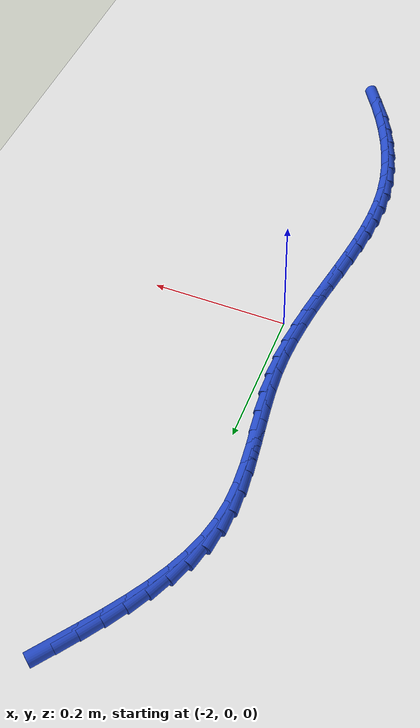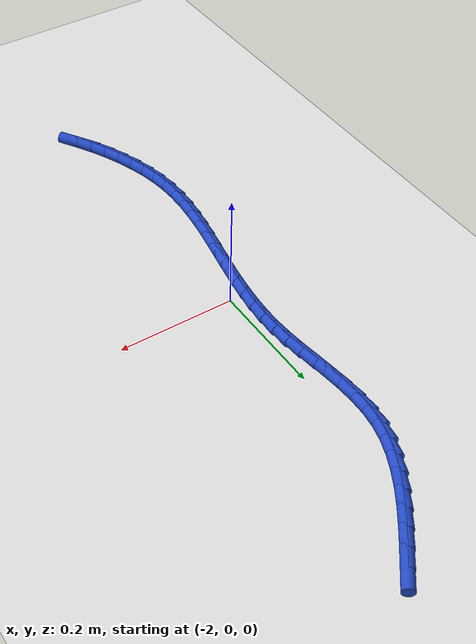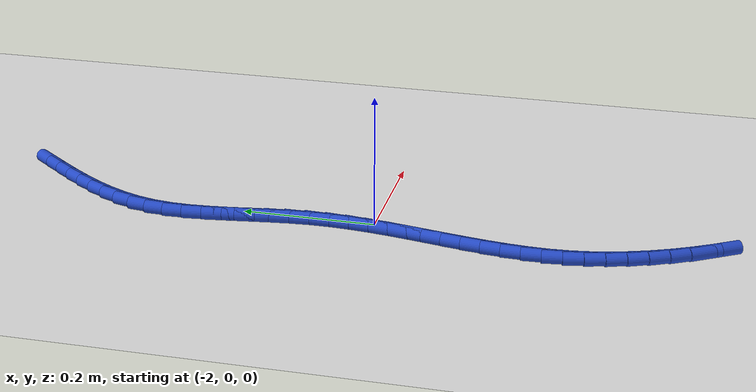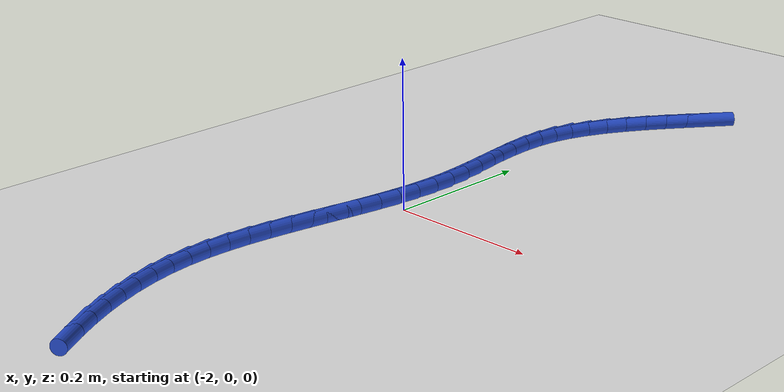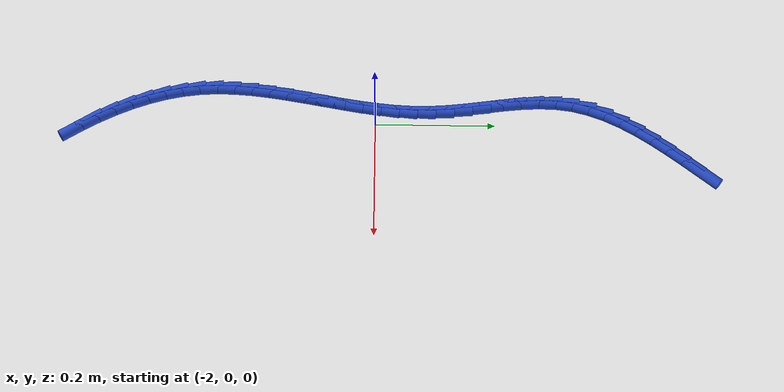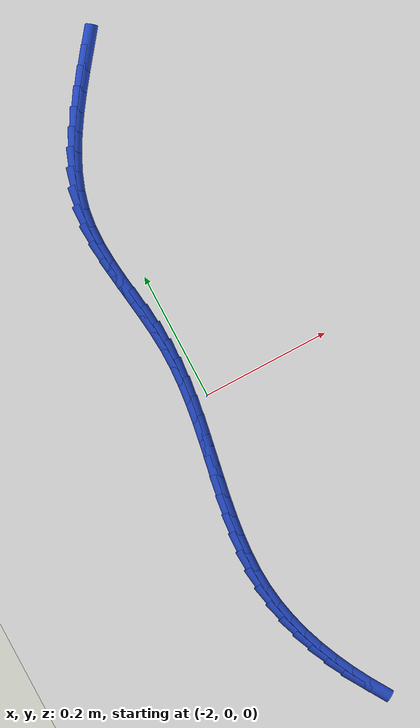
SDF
<sdf version="1.6">
 <world name="default">
  <model name="ground_plane">
   <static>1</static>
   <link name="link">
    <collision name="collision">
     <geometry><plane><normal>0 0 1</normal><size>100 100</size></plane></geometry>
     <surface><friction><ode><mu>100</mu><mu2>50</mu2></ode></friction></surface>
    </collision>
    <visual name="visual">
     <cast_shadows>0</cast_shadows>
     <geometry><plane><normal>0 0 1</normal><size>100 100</size></plane></geometry>
     <material>
      <script><uri>file://media/materials/scripts/gazebo.material</uri><name>Gazebo/WhiteGlow</name></script>
     </material>
    </visual>
   </link>
  </model>
  <model name="line">
   <link name="link_91">
    <pose>-1.9174202712299586 0.5385667051766511 0.01 0 1.57 0.9115392157638947</pose>
    <collision name="collision">
     <geometry><cylinder><radius>0.01</radius><length>0.08</length></cylinder></geometry>
    </collision>
    <visual name="visual">
     <material>
      <script><name>Gazebo/Blue</name><uri>file://media/materials/scripts/gazebo.material</uri></script>
     </material>
     <geometry><cylinder><radius>0.01</radius><length>0.08</length></cylinder></geometry>
    </visual>
   </link>
   <link name="link_92">
    <pose>-1.9366600018459328 0.5137385308742393 0.01 0 1.57 0.9272586865867808</pose>
    <collision name="collision">
     <geometry><cylinder><radius>0.01</radius><length>0.08</length></cylinder></geometry>
    </collision>
    <visual name="visual">
     <material>
      <script><name>Gazebo/Blue</name><uri>file://media/materials/scripts/gazebo.material</uri></script>
     </material>
     <geometry><cylinder><radius>0.01</radius><length>0.08</length></cylinder></geometry>
    </visual>
   </link>
   <link name="link_93">
    <pose>-1.9554236560845026 0.4887222291935094 0.01 0 1.57 0.9555061300025273</pose>
    <collision name="collision">
     <geometry><cylinder><radius>0.01</radius><length>0.08</length></cylinder></geometry>
    </collision>
    <visual name="visual">
     <material>
      <script><name>Gazebo/Blue</name><uri>file://media/materials/scripts/gazebo.material</uri></script>
     </material>
     <geometry><cylinder><radius>0.01</radius><length>0.08</length></cylinder></geometry>
    </visual>
   </link>
   <link name="link_94">
    <pose>-1.9732894176212754 0.4634460668809005 0.01 0 1.57 0.9971433683004516</pose>
    <collision name="collision">
     <geometry><cylinder><radius>0.01</radius><length>0.08</length></cylinder></geometry>
    </collision>
    <visual name="visual">
     <material>
      <script><name>Gazebo/Blue</name><uri>file://media/materials/scripts/gazebo.material</uri></script>
     </material>
     <geometry><cylinder><radius>0.01</radius><length>0.08</length></cylinder></geometry>
    </visual>
   </link>
   <link name="link_95">
    <pose>-1.9898354701318612 0.4378383106828499 0.01 0 1.57 1.0533603252424557</pose>
    <collision name="collision">
     <geometry><cylinder><radius>0.01</radius><length>0.08</length></cylinder></geometry>
    </collision>
    <visual name="visual">
     <material>
      <script><name>Gazebo/Blue</name><uri>file://media/materials/scripts/gazebo.material</uri></script>
     </material>
     <geometry><cylinder><radius>0.01</radius><length>0.08</length></cylinder></geometry>
    </visual>
   </link>
   <link name="link_96">
    <pose>-2.0046399972918674 0.4118272273457962 0.01 0 1.57 1.125493086305104</pose>
    <collision name="collision">
     <geometry><cylinder><radius>0.01</radius><length>0.08</length></cylinder></geometry>
    </collision>
    <visual name="visual">
     <material>
      <script><name>Gazebo/Blue</name><uri>file://media/materials/scripts/gazebo.material</uri></script>
     </material>
     <geometry><cylinder><radius>0.01</radius><length>0.08</length></cylinder></geometry>
    </visual>
   </link>
   <link name="link_97">
    <pose>-2.0172811827769035 0.38534108361617714 0.01 0 1.57 1.2146657026031353</pose>
    <collision name="collision">
     <geometry><cylinder><radius>0.01</radius><length>0.08</length></cylinder></geometry>
    </collision>
    <visual name="visual">
     <material>
      <script><name>Gazebo/Blue</name><uri>file://media/materials/scripts/gazebo.material</uri></script>
     </material>
     <geometry><cylinder><radius>0.01</radius><length>0.08</length></cylinder></geometry>
    </visual>
   </link>
   <link name="link_98">
    <pose>-2.0273372102625777 0.3583081462404305 0.01 0 1.57 1.3211876445858368</pose>
    <collision name="collision">
     <geometry><cylinder><radius>0.01</radius><length>0.08</length></cylinder></geometry>
    </collision>
    <visual name="visual">
     <material>
      <script><name>Gazebo/Blue</name><uri>file://media/materials/scripts/gazebo.material</uri></script>
     </material>
     <geometry><cylinder><radius>0.01</radius><length>0.08</length></cylinder></geometry>
    </visual>
   </link>
   <link name="link_99">
    <pose>-2.034386263424498 0.3306566819649948 0.01 0 1.57 1.4412703697530307</pose>
    <collision name="collision">
     <geometry><cylinder><radius>0.01</radius><length>0.08</length></cylinder></geometry>
    </collision>
    <visual name="visual">
     <material>
      <script><name>Gazebo/Blue</name><uri>file://media/materials/scripts/gazebo.material</uri></script>
     </material>
     <geometry><cylinder><radius>0.01</radius><length>0.08</length></cylinder></geometry>
    </visual>
   </link>
   <link name="link_100">
    <pose>-2.0380765347162346 0.3023255963508941 0.01 0 1.57 1.5476922811112919</pose>
    <collision name="collision">
     <geometry><cylinder><radius>0.01</radius><length>0.08</length></cylinder></geometry>
    </collision>
    <visual name="visual">
     <material>
      <script><name>Gazebo/Blue</name><uri>file://media/materials/scripts/gazebo.material</uri></script>
     </material>
     <geometry><cylinder><radius>0.01</radius><length>0.08</length></cylinder></geometry>
    </visual>
   </link>
   <link name="link_101">
    <pose>-2.0387459085541235 0.2733586033150124 0.01 0 1.57 -1.5158908928355868</pose>
    <collision name="collision">
     <geometry><cylinder><radius>0.01</radius><length>0.08</length></cylinder></geometry>
    </collision>
    <visual name="visual">
     <material>
      <script><name>Gazebo/Blue</name><uri>file://media/materials/scripts/gazebo.material</uri></script>
     </material>
     <geometry><cylinder><radius>0.01</radius><length>0.08</length></cylinder></geometry>
    </visual>
   </link>
   <link name="link_102">
    <pose>-2.037124592458605 0.24385903576608106 0.01 0 1.57 -1.4650293170088673</pose>
    <collision name="collision">
     <geometry><cylinder><radius>0.01</radius><length>0.08</length></cylinder></geometry>
    </collision>
    <visual name="visual">
     <material>
      <script><name>Gazebo/Blue</name><uri>file://media/materials/scripts/gazebo.material</uri></script>
     </material>
     <geometry><cylinder><radius>0.01</radius><length>0.08</length></cylinder></geometry>
    </visual>
   </link>
   <link name="link_103">
    <pose>-2.033947328181794 0.2139309156528575 0.01 0 1.57 -1.4393887006233637</pose>
    <collision name="collision">
     <geometry><cylinder><radius>0.01</radius><length>0.08</length></cylinder></geometry>
    </collision>
    <visual name="visual">
     <material>
      <script><name>Gazebo/Blue</name><uri>file://media/materials/scripts/gazebo.material</uri></script>
     </material>
     <geometry><cylinder><radius>0.01</radius><length>0.08</length></cylinder></geometry>
    </visual>
   </link>
   <link name="link_104">
    <pose>-2.0299488574758078 0.18367826492409778 0.01 0 1.57 -1.4375404425537504</pose>
    <collision name="collision">
     <geometry><cylinder><radius>0.01</radius><length>0.08</length></cylinder></geometry>
    </collision>
    <visual name="visual">
     <material>
      <script><name>Gazebo/Blue</name><uri>file://media/materials/scripts/gazebo.material</uri></script>
     </material>
     <geometry><cylinder><radius>0.01</radius><length>0.08</length></cylinder></geometry>
    </visual>
   </link>
   <link name="link_105">
    <pose>-2.025863922092758 0.15320510552855918 0.01 0 1.57 -1.4589183470313962</pose>
    <collision name="collision">
     <geometry><cylinder><radius>0.01</radius><length>0.08</length></cylinder></geometry>
    </collision>
    <visual name="visual">
     <material>
      <script><name>Gazebo/Blue</name><uri>file://media/materials/scripts/gazebo.material</uri></script>
     </material>
     <geometry><cylinder><radius>0.01</radius><length>0.08</length></cylinder></geometry>
    </visual>
   </link>
   <link name="link_106">
    <pose>-2.0224272637847625 0.12261545941499769 0.01 0 1.57 -1.5037890223321322</pose>
    <collision name="collision">
     <geometry><cylinder><radius>0.01</radius><length>0.08</length></cylinder></geometry>
    </collision>
    <visual name="visual">
     <material>
      <script><name>Gazebo/Blue</name><uri>file://media/materials/scripts/gazebo.material</uri></script>
     </material>
     <geometry><cylinder><radius>0.01</radius><length>0.08</length></cylinder></geometry>
    </visual>
   </link>
   <link name="link_107">
    <pose>-2.0203736243039345 0.09201334853217064 0.01 0 1.57 -1.5674131818990953</pose>
    <collision name="collision">
     <geometry><cylinder><radius>0.01</radius><length>0.08</length></cylinder></geometry>
    </collision>
    <visual name="visual">
     <material>
      <script><name>Gazebo/Blue</name><uri>file://media/materials/scripts/gazebo.material</uri></script>
     </material>
     <geometry><cylinder><radius>0.01</radius><length>0.08</length></cylinder></geometry>
    </visual>
   </link>
   <link name="link_108">
    <pose>-2.020270350408525 0.061487460762905594 0.01 0 1.57 1.515199683988353</pose>
    <collision name="collision">
     <geometry><cylinder><radius>0.01</radius><length>0.08</length></cylinder></geometry>
    </collision>
    <visual name="visual">
     <material>
      <script><name>Gazebo/Blue</name><uri>file://media/materials/scripts/gazebo.material</uri></script>
     </material>
     <geometry><cylinder><radius>0.01</radius><length>0.08</length></cylinder></geometry>
    </visual>
   </link>
   <link name="link_109">
    <pose>-2.0219637361281935 0.031060432611655524 0.01 0 1.57 1.4675404997872972</pose>
    <collision name="collision">
     <geometry><cylinder><radius>0.01</radius><length>0.08</length></cylinder></geometry>
    </collision>
    <visual name="visual">
     <material>
      <script><name>Gazebo/Blue</name><uri>file://media/materials/scripts/gazebo.material</uri></script>
     </material>
     <geometry><cylinder><radius>0.01</radius><length>0.08</length></cylinder></geometry>
    </visual>
   </link>
   <link name="link_110">
    <pose>-2.025105970076821 0.0007371197330750734 0.01 0 1.57 1.4312718009136338</pose>
    <collision name="collision">
     <geometry><cylinder><radius>0.01</radius><length>0.08</length></cylinder></geometry>
    </collision>
    <visual name="visual">
     <material>
      <script><name>Gazebo/Blue</name><uri>file://media/materials/scripts/gazebo.material</uri></script>
     </material>
     <geometry><cylinder><radius>0.01</radius><length>0.08</length></cylinder></geometry>
    </visual>
   </link>
   <link name="link_111">
    <pose>-2.029349238156505 -0.02947762246658986 0.01 0 1.57 1.4063070487789713</pose>
    <collision name="collision">
     <geometry><cylinder><radius>0.01</radius><length>0.08</length></cylinder></geometry>
    </collision>
    <visual name="visual">
     <material>
      <script><name>Gazebo/Blue</name><uri>file://media/materials/scripts/gazebo.material</uri></script>
     </material>
     <geometry><cylinder><radius>0.01</radius><length>0.08</length></cylinder></geometry>
    </visual>
   </link>
   <link name="link_112">
    <pose>-2.034345726269344 -0.05957893858109448 0.01 0 1.57 1.392543551514347</pose>
    <collision name="collision">
     <geometry><cylinder><radius>0.01</radius><length>0.08</length></cylinder></geometry>
    </collision>
    <visual name="visual">
     <material>
      <script><name>Gazebo/Blue</name><uri>file://media/materials/scripts/gazebo.material</uri></script>
     </material>
     <geometry><cylinder><radius>0.01</radius><length>0.08</length></cylinder></geometry>
    </visual>
   </link>
   <link name="link_113">
    <pose>-2.0397476203174336 -0.0895619732041937 0.01 0 1.57 1.3899570549970033</pose>
    <collision name="collision">
     <geometry><cylinder><radius>0.01</radius><length>0.08</length></cylinder></geometry>
    </collision>
    <visual name="visual">
     <material>
      <script><name>Gazebo/Blue</name><uri>file://media/materials/scripts/gazebo.material</uri></script>
     </material>
     <geometry><cylinder><radius>0.01</radius><length>0.08</length></cylinder></geometry>
    </visual>
   </link>
   <link name="link_114">
    <pose>-2.0452071062028745 -0.11942187092964314 0.01 0 1.57 1.3986545651890643</pose>
    <collision name="collision">
     <geometry><cylinder><radius>0.01</radius><length>0.08</length></cylinder></geometry>
    </collision>
    <visual name="visual">
     <material>
      <script><name>Gazebo/Blue</name><uri>file://media/materials/scripts/gazebo.material</uri></script>
     </material>
     <geometry><cylinder><radius>0.01</radius><length>0.08</length></cylinder></geometry>
    </visual>
   </link>
   <link name="link_115">
    <pose>-2.0503763698277626 -0.14915377635119623 0.01 0 1.57 1.4188888055691105</pose>
    <collision name="collision">
     <geometry><cylinder><radius>0.01</radius><length>0.08</length></cylinder></geometry>
    </collision>
    <visual name="visual">
     <material>
      <script><name>Gazebo/Blue</name><uri>file://media/materials/scripts/gazebo.material</uri></script>
     </material>
     <geometry><cylinder><radius>0.01</radius><length>0.08</length></cylinder></geometry>
    </visual>
   </link>
   <link name="link_116">
    <pose>-2.0549075970941955 -0.17875283406260845 0.01 0 1.57 1.4510323278225519</pose>
    <collision name="collision">
     <geometry><cylinder><radius>0.01</radius><length>0.08</length></cylinder></geometry>
    </collision>
    <visual name="visual">
     <material>
      <script><name>Gazebo/Blue</name><uri>file://media/materials/scripts/gazebo.material</uri></script>
     </material>
     <geometry><cylinder><radius>0.01</radius><length>0.08</length></cylinder></geometry>
    </visual>
   </link>
   <link name="link_117">
    <pose>-2.0584529739042723 -0.20821418865763486 0.01 0 1.57 1.4955022687764408</pose>
    <collision name="collision">
     <geometry><cylinder><radius>0.01</radius><length>0.08</length></cylinder></geometry>
    </collision>
    <visual name="visual">
     <material>
      <script><name>Gazebo/Blue</name><uri>file://media/materials/scripts/gazebo.material</uri></script>
     </material>
     <geometry><cylinder><radius>0.01</radius><length>0.08</length></cylinder></geometry>
    </visual>
   </link>
   <link name="link_118">
    <pose>-2.0606646861600897 -0.23753298473003098 0.01 0 1.57 1.5526218289649503</pose>
    <collision name="collision">
     <geometry><cylinder><radius>0.01</radius><length>0.08</length></cylinder></geometry>
    </collision>
    <visual name="visual">
     <material>
      <script><name>Gazebo/Blue</name><uri>file://media/materials/scripts/gazebo.material</uri></script>
     </material>
     <geometry><cylinder><radius>0.01</radius><length>0.08</length></cylinder></geometry>
    </visual>
   </link>
   <link name="link_119">
    <pose>-2.0611949197637456 -0.2667043668735502 0.01 0 1.57 -1.5191845539704778</pose>
    <collision name="collision">
     <geometry><cylinder><radius>0.01</radius><length>0.08</length></cylinder></geometry>
    </collision>
    <visual name="visual">
     <material>
      <script><name>Gazebo/Blue</name><uri>file://media/materials/scripts/gazebo.material</uri></script>
     </material>
     <geometry><cylinder><radius>0.01</radius><length>0.08</length></cylinder></geometry>
    </visual>
   </link>
   <link name="link_120">
    <pose>-2.059695860617338 -0.2957234796819482 0.01 0 1.57 -1.4391969134584592</pose>
    <collision name="collision">
     <geometry><cylinder><radius>0.01</radius><length>0.08</length></cylinder></geometry>
    </collision>
    <visual name="visual">
     <material>
      <script><name>Gazebo/Blue</name><uri>file://media/materials/scripts/gazebo.material</uri></script>
     </material>
     <geometry><cylinder><radius>0.01</radius><length>0.08</length></cylinder></geometry>
    </visual>
   </link>
   <link name="link_121">
    <pose>-2.0558762451945873 -0.32458029555564927 0.01 0 1.57 -1.3610787367109451</pose>
    <collision name="collision">
     <geometry><cylinder><radius>0.01</radius><length>0.08</length></cylinder></geometry>
    </collision>
    <visual name="visual">
     <material>
      <script><name>Gazebo/Blue</name><uri>file://media/materials/scripts/gazebo.material</uri></script>
     </material>
     <geometry><cylinder><radius>0.01</radius><length>0.08</length></cylinder></geometry>
    </visual>
   </link>
   <link name="link_122">
    <pose>-2.0497773036404325 -0.3532343765650092 0.01 0 1.57 -1.28918974333573</pose>
    <collision name="collision">
     <geometry><cylinder><radius>0.01</radius><length>0.08</length></cylinder></geometry>
    </collision>
    <visual name="visual">
     <material>
      <script><name>Gazebo/Blue</name><uri>file://media/materials/scripts/gazebo.material</uri></script>
     </material>
     <geometry><cylinder><radius>0.01</radius><length>0.08</length></cylinder></geometry>
    </visual>
   </link>
   <link name="link_123">
    <pose>-2.041561387255859 -0.38163420687228045 0.01 0 1.57 -1.223461281835214</pose>
    <collision name="collision">
     <geometry><cylinder><radius>0.01</radius><length>0.08</length></cylinder></geometry>
    </collision>
    <visual name="visual">
     <material>
      <script><name>Gazebo/Blue</name><uri>file://media/materials/scripts/gazebo.material</uri></script>
     </material>
     <geometry><cylinder><radius>0.01</radius><length>0.08</length></cylinder></geometry>
    </visual>
   </link>
   <link name="link_124">
    <pose>-2.0313910224393203 -0.4097282546250618 0.01 0 1.57 -1.163618860332158</pose>
    <collision name="collision">
     <geometry><cylinder><radius>0.01</radius><length>0.08</length></cylinder></geometry>
    </collision>
    <visual name="visual">
     <material>
      <script><name>Gazebo/Blue</name><uri>file://media/materials/scripts/gazebo.material</uri></script>
     </material>
     <geometry><cylinder><radius>0.01</radius><length>0.08</length></cylinder></geometry>
    </visual>
   </link>
   <link name="link_125">
    <pose>-2.0194287355892713 -0.4374649879709514 0.01 0 1.57 -1.1092663337087127</pose>
    <collision name="collision">
     <geometry><cylinder><radius>0.01</radius><length>0.08</length></cylinder></geometry>
    </collision>
    <visual name="visual">
     <material>
      <script><name>Gazebo/Blue</name><uri>file://media/materials/scripts/gazebo.material</uri></script>
     </material>
     <geometry><cylinder><radius>0.01</radius><length>0.08</length></cylinder></geometry>
    </visual>
   </link>
   <link name="link_126">
    <pose>-2.0058370531041625 -0.46479287505754785 0.01 0 1.57 -1.0599469117440818</pose>
    <collision name="collision">
     <geometry><cylinder><radius>0.01</radius><length>0.08</length></cylinder></geometry>
    </collision>
    <visual name="visual">
     <material>
      <script><name>Gazebo/Blue</name><uri>file://media/materials/scripts/gazebo.material</uri></script>
     </material>
     <geometry><cylinder><radius>0.01</radius><length>0.08</length></cylinder></geometry>
    </visual>
   </link>
   <link name="link_127">
    <pose>-1.990778501382449 -0.49166038403244805 0.01 0 1.57 -1.015186276013518</pose>
    <collision name="collision">
     <geometry><cylinder><radius>0.01</radius><length>0.08</length></cylinder></geometry>
    </collision>
    <visual name="visual">
     <material>
      <script><name>Gazebo/Blue</name><uri>file://media/materials/scripts/gazebo.material</uri></script>
     </material>
     <geometry><cylinder><radius>0.01</radius><length>0.08</length></cylinder></geometry>
    </visual>
   </link>
  </model>
 </world>
</sdf>
